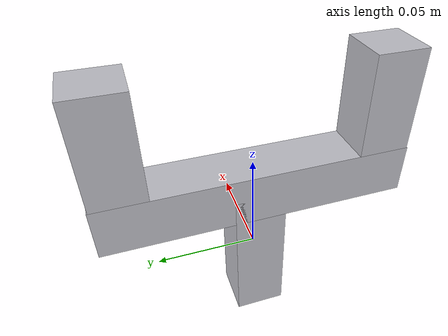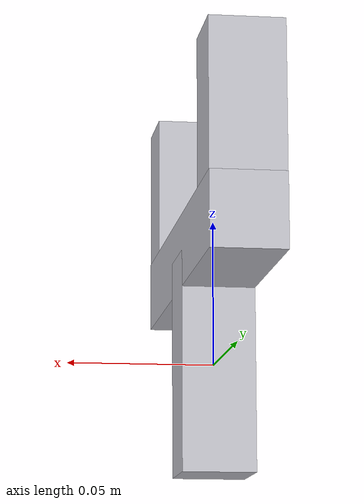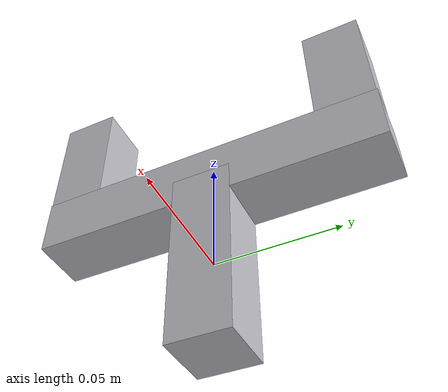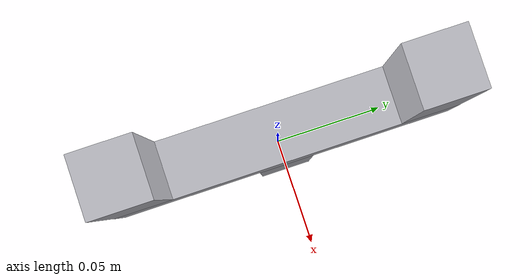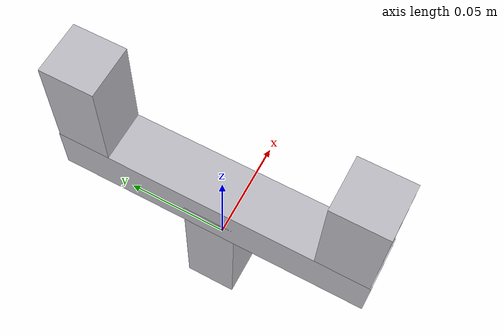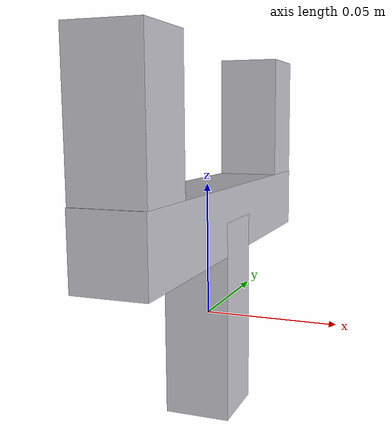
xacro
<?xml version="1.0" ?>
<robot name="iai_student_robot" xmlns:xacro="http://www.ros.org/wiki/xacro">
    <material name="black">
        <color rgba="0.0 0.0 0.0 1.0"/>
    </material>
    <material name="blue">
        <color rgba="0 0 0.8 1"/>
    </material>
    <material name="green">
        <color rgba="0.0 0.8 0.0 1.0"/>
    </material>
    <material name="grey">
        <color rgba="0.2 0.2 0.2 1.0"/>
    </material>
    <material name="orange">
        <color rgba="1.0 0.423529411765 0.0392156862745 1.0"/>
    </material>
    <material name="brown">
        <color rgba="0.870588235294 0.811764705882 0.764705882353 1.0"/>
    </material>
    <material name="red">
        <color rgba="0.80078125 0.12890625 0.1328125 1.0"/>
    </material>
    <material name="white">
        <color rgba="1.0 1.0 1.0 1.0"/>
    </material>

    <link name="base_link">

    </link>

    <link name="gripper_base_link">
        <visual>
            <geometry>
                <box size="0.025 0.025 0.075"/>
            </geometry>
            <material name="silver"/>
        </visual>
    </link>

    <joint name="gripper_wrist" type="continuous">
        <axis xyz="0 0 1"/>
        <parent link="base_link"/>
        <child link="gripper_base_link"/>
        <origin rpy="0 0 0" xyz="0.0 0.0 0.0"/>
    </joint>

    <link name="gripper_horizontal_link">
        <visual>
            <geometry>
                <box size="0.025 0.15 0.025"/>
            </geometry>
            <material name="silver"/>
        </visual>
    </link>

    <joint name="gripper_horizontal_joint" type="fixed">
        <parent link="gripper_base_link"/>
        <child link="gripper_horizontal_link"/>
        <origin rpy="0 0 0" xyz="0.0 0.0 0.0375"/>
    </joint>

    <link name="gripper_hand_left_link">
        <visual>
            <geometry>
                <box size="0.025 0.025 0.05"/>
            </geometry>
            <material name="silver"/>
        </visual>
    </link>

    <joint name="gripper_hand_left_joint" type="prismatic">
        <parent link="gripper_horizontal_link"/>
        <child link="gripper_hand_left_link"/>
        <limit effort="1000.0" lower="-0.05" upper="0" velocity="0.5"/>
        <axis xyz="0 -1 0"/>
        <origin rpy="0 0 0" xyz="0.0 -0.062 0.0375"/>
    </joint>

    <link name="gripper_hand_right_link">
        <visual>
            <geometry>
                <box size="0.025 0.025 0.05"/>
            </geometry>
            <material name="silver"/>
        </visual>
    </link>

    <joint name="gripper_hand_right_joint" type="prismatic">
        <parent link="gripper_horizontal_link"/>
        <child link="gripper_hand_right_link"/>
        <limit effort="1000.0" lower="-0.05" upper="0.0" velocity="0.5"/>
        <axis xyz="0 1 0"/>
        <origin rpy="0 0 0" xyz="0.0 0.062 0.0375"/>
    </joint>
</robot>
